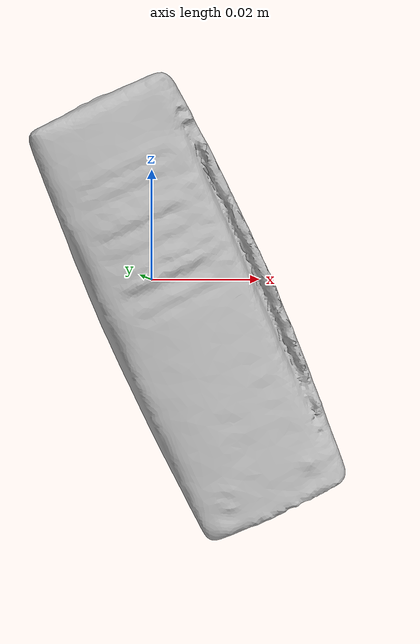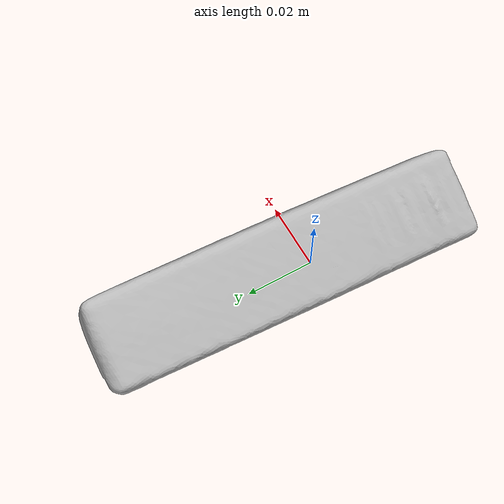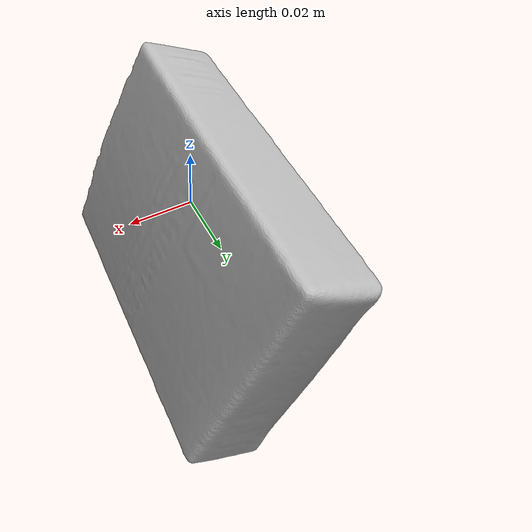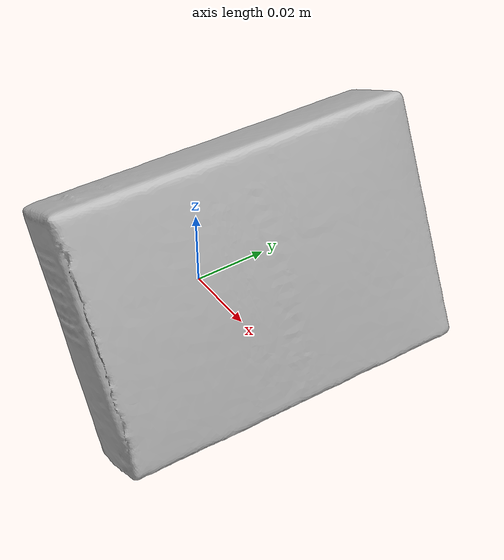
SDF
<?xml version='1.0'?>
<sdf version="1.4">
  <model name="Patches">
    <static>false</static>
    <link name="link">
      <inertial>
        <pose>0.004012718120265705 0.014065666912035887 -0.001791933764202876 -1.5933375426922338 0.4201147886365118 3.0894829459489745</pose>
        <mass>0.018923728088114808</mass>
        <inertia>
          <ixx>2.3836609883463552e-05</ixx>
          <ixy>2.904046844848785e-21</ixy>
          <ixz>9.218220717981865e-22</ixz>
          <iyy>1.7229621495715742e-05</iyy>
          <iyz>2.427642082769748e-21</iyz>
          <izz>8.753461423111863e-06</izz>
        </inertia>
      </inertial>
      <collision name="collision">
        <geometry>
          <mesh>
            <!-- Use a downsampled mesh for collisions -->
            <uri>model:///Patches/Patches_250_collision.obj</uri>
	        </mesh>
        </geometry>
        <surface>
      </surface>
      </collision>
      <visual name="visual">
        <geometry>
          <mesh>
            <uri>model:///Patches/Patches_25k_tex.obj</uri>
	        </mesh>
        </geometry>
        <material>
          <script>
            <uri>model:///Patches/Patches.material</uri>
            <name>Patches</name>
          </script>
        </material>
      </visual>
    </link>
  </model>
</sdf>
